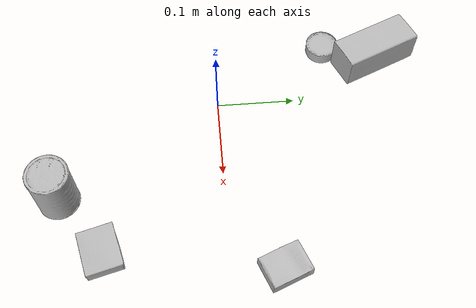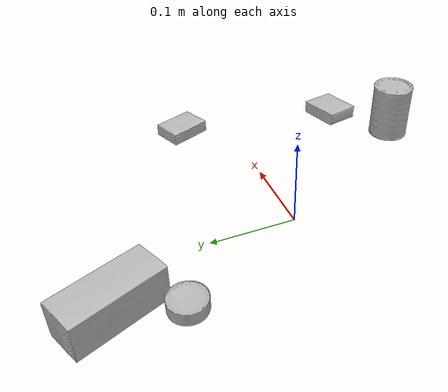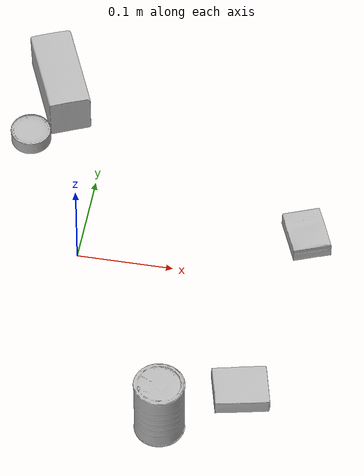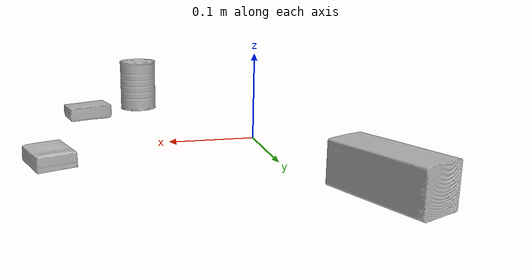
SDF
<sdf version="1.4">
  <world name="default">
    <light name="light1" type="point">
      <pose>0 0 1 0 0 0</pose>
      <diffuse>3 3 3 1</diffuse>
      <specular>3 3 3 1</specular>
    </light>
    <light name="light2" type="point">
      <pose>0 0.5 2 0 0 0</pose>
      <diffuse>1 1 1 1</diffuse>
      <specular>1 1 1 1</specular>
    </light>
    <light name="light3" type="point">
      <pose>0 0.5 2 0 0 0</pose>
      <diffuse>3 3 3 1</diffuse>
      <specular>3 3 3 1</specular>
    </light>
    <scene>
      <ambient>0.7 0.7 0.7</ambient>
    </scene>
    <model name="box1">
      <link name="link_box1">
        <collision name="default">
          <geometry>
            <mesh>
              <uri>model://pudding_box/collision_meshes/collision.obj</uri>
              <scale>0.5 0.5 0.5</scale>
            </mesh>
          </geometry>
          <surface>
            <friction>
              <ode>
                <mu>0.5</mu>
                <mu2>0.5</mu2>
              </ode>
            </friction>
          <contact>
        <ode>
            <max_vel>0</max_vel>
            <min_depth>0.0001</min_depth>
            <kp>1e8</kp>
        </ode>
    </contact></surface>
        </collision>
        <visual name="default">
          <geometry>
            <mesh>
              <uri>model://pudding_box/visual_meshes/visual.dae</uri>
              <scale>0.5 0.5 0.5</scale>
            </mesh>
          </geometry>
        </visual>
        <inertial>
          <mass>0.03999795392155647</mass>
          <pose>0.00024474109522998333 0.0004033942532259971 -0.0002594413817860186 0.005213101299265121 -0.006603799659933957 0.020079830747700592</pose>
          <inertia>
            <ixx>1.1303907e-05</ixx>
            <iyy>7.605349e-06</iyy>
            <izz>1.6693173e-05</izz>
            <ixy>0</ixy>
            <ixz>0</ixz>
            <iyz>0</iyz>
          </inertia>
        </inertial>
      </link>
      <pose>0.1946793645620346 -0.14855240285396576 0.009862903505563736 0.022348507782737004 -0.011391693035668022 1.815476217282531</pose>
    </model>
    <model name="box2">
      <link name="link_box2">
        <collision name="default">
          <geometry>
            <mesh>
              <uri>model://cracker_box/collision_meshes/collision.obj</uri>
              <scale>0.25 0.25 0.25</scale>
            </mesh>
          </geometry>
          <surface>
            <friction>
              <ode>
                <mu>0.5</mu>
                <mu2>0.5</mu2>
              </ode>
            </friction>
          <contact>
        <ode>
            <max_vel>0</max_vel>
            <min_depth>0.0001</min_depth>
            <kp>1e8</kp>
        </ode>
    </contact></surface>
        </collision>
        <visual name="default">
          <geometry>
            <mesh>
              <uri>model://cracker_box/visual_meshes/visual.dae</uri>
              <scale>0.25 0.25 0.25</scale>
            </mesh>
          </geometry>
        </visual>
        <inertial>
          <mass>0.046595875173807144</mass>
          <pose>0.00023660322767682374 6.358561950037256e-05 -0.0004257383698131889 -0.00031620768958073674 -0.011106491463008503 0.002546795235494827</pose>
          <inertia>
            <ixx>7.407444e-06</ixx>
            <iyy>1.2231146e-05</iyy>
            <izz>1.7454966e-05</izz>
            <ixy>0</ixy>
            <ixz>0</ixz>
            <iyz>0</iyz>
          </inertia>
        </inertial>
      </link>
      <pose>0.2289317101240158 0.06261936575174332 0.009096028283238411 -0.014050543442485715 -0.005016545235662706 -1.1895112025458094</pose>
    </model>
    <model name="box3">
      <link name="link_box3">
        <collision name="default">
          <geometry>
            <mesh>
              <uri>model://wood_block/collision_meshes/collision.obj</uri>
              <scale>0.5 0.5 0.5</scale>
            </mesh>
          </geometry>
          <surface>
            <friction>
              <ode>
                <mu>0.5</mu>
                <mu2>0.5</mu2>
              </ode>
            </friction>
          <contact>
        <ode>
            <max_vel>0</max_vel>
            <min_depth>0.0001</min_depth>
            <kp>1e8</kp>
        </ode>
    </contact></surface>
        </collision>
        <visual name="default">
          <geometry>
            <mesh>
              <uri>model://wood_block/visual_meshes/visual.dae</uri>
              <scale>0.5 0.5 0.5</scale>
            </mesh>
          </geometry>
        </visual>
        <inertial>
          <mass>0.28600308299064636</mass>
          <pose>-2.9066577553749084e-06 -0.000285404734313488 0.00013204291462898254 -0.052207212015849935 -0.005192697210617926 -0.006861377963206113</pose>
          <inertia>
            <ixx>9.567885e-05</ixx>
            <iyy>0.00030224954</iyy>
            <izz>0.00030111894</izz>
            <ixy>0</ixy>
            <ixz>0</ixz>
            <iyz>0</iyz>
          </inertia>
        </inertial>
      </link>
      <pose>-0.05994349345564842 0.21460644900798798 0.022629255428910255 -0.005208387881723566 0.005718755824920278 1.97505459225997</pose>
    </model>
    <model name="can1">
      <link name="link_can1">
        <collision name="default">
          <geometry>
            <mesh>
              <uri>model://master_chef_can/collision_meshes/collision.obj</uri>
              <scale>0.5 0.5 0.5</scale>
            </mesh>
          </geometry>
          <surface>
            <friction>
              <ode>
                <mu>0.5</mu>
                <mu2>0.5</mu2>
              </ode>
            </friction>
          <contact>
        <ode>
            <max_vel>0</max_vel>
            <min_depth>0.0001</min_depth>
            <kp>1e8</kp>
        </ode>
    </contact></surface>
        </collision>
        <visual name="default">
          <geometry>
            <mesh>
              <uri>model://master_chef_can/visual_meshes/visual.dae</uri>
              <scale>0.5 0.5 0.5</scale>
            </mesh>
          </geometry>
        </visual>
        <inertial>
          <mass>0.116209015250206</mass>
          <pose>-4.661964703700505e-05 1.3926850783718692e-07 -5.0799026212189347e-05 -0.001799512795725948 0.0006479254888938259 -0.6102617322721998</pose>
          <inertia>
            <ixx>6.820682e-05</ixx>
            <iyy>6.7704816e-05</iyy>
            <izz>3.768948e-05</izz>
            <ixy>0</ixy>
            <ixz>0</ixz>
            <iyz>0</iyz>
          </inertia>
        </inertial>
      </link>
      <pose>0.12160684913396835 -0.2006179243326187 0.035301998257637024 -6.82503446619247e-07 -5.507905856012946e-07 -3.03101516778293</pose>
    </model>
    <model name="can2">
      <link name="link_can2">
        <collision name="default">
          <geometry>
            <mesh>
              <uri>model://tuna_fish_can/collision_meshes/collision.obj</uri>
              <scale>0.5 0.5 0.5</scale>
            </mesh>
          </geometry>
          <surface>
            <friction>
              <ode>
                <mu>0.5</mu>
                <mu2>0.5</mu2>
              </ode>
            </friction>
          <contact>
        <ode>
            <max_vel>0</max_vel>
            <min_depth>0.0001</min_depth>
            <kp>1e8</kp>
        </ode>
    </contact></surface>
        </collision>
        <visual name="default">
          <geometry>
            <mesh>
              <uri>model://tuna_fish_can/visual_meshes/visual.dae</uri>
              <scale>0.5 0.5 0.5</scale>
            </mesh>
          </geometry>
        </visual>
        <inertial>
          <mass>0.017585277557373047</mass>
          <pose>-2.03625786525663e-05 -7.2565176196803804e-06 -0.000526902440469712 -0.0017944765250671837 0.00017163661440384507 0.24054644931605637</pose>
          <inertia>
            <ixx>2.3775558e-06</ixx>
            <iyy>2.3676464e-06</iyy>
            <izz>4.0683376e-06</izz>
            <ixy>0</ixy>
            <ixz>0</ixz>
            <iyz>0</iyz>
          </inertia>
        </inertial>
      </link>
      <pose>-0.07866944372653961 0.14778709411621094 0.008520001545548439 1.850488431758002e-08 2.051209241531252e-08 2.1781410801556236</pose>
    </model>
  <physics type="ode">
      <max_contacts>50</max_contacts>
      <ode>
        <solver>
          <type>quick</type>
          <iters>75</iters>
        </solver>
        <constraints>
          <contact_max_correcting_vel>0</contact_max_correcting_vel>
          <contact_surface_layer>0</contact_surface_layer>
        </constraints>
      </ode>
    </physics></world>
</sdf>
